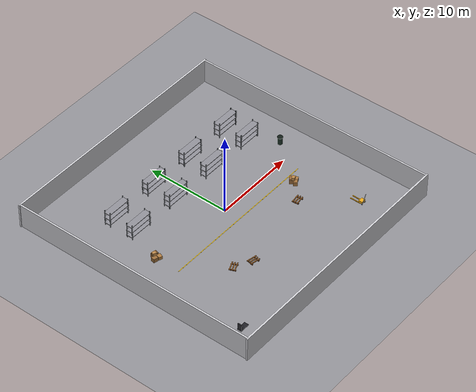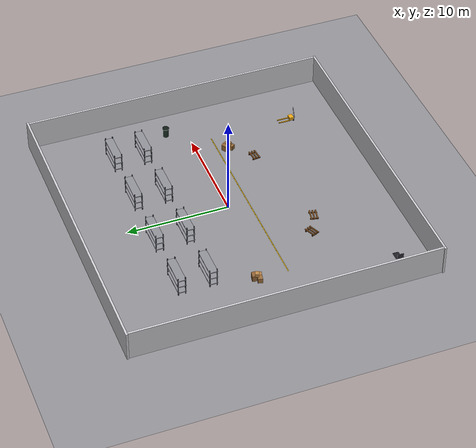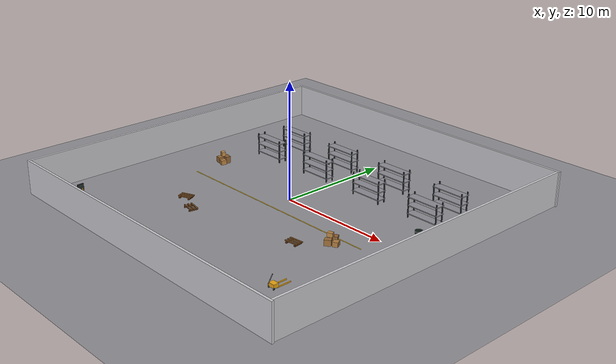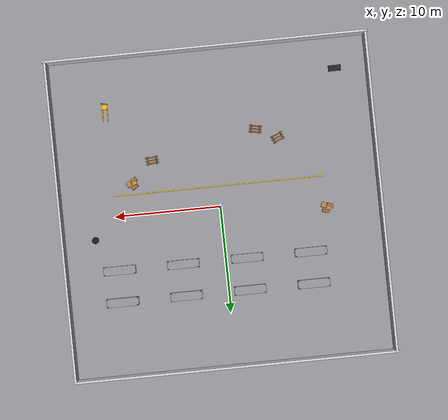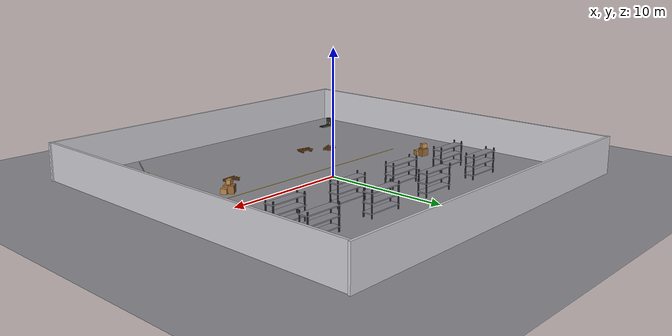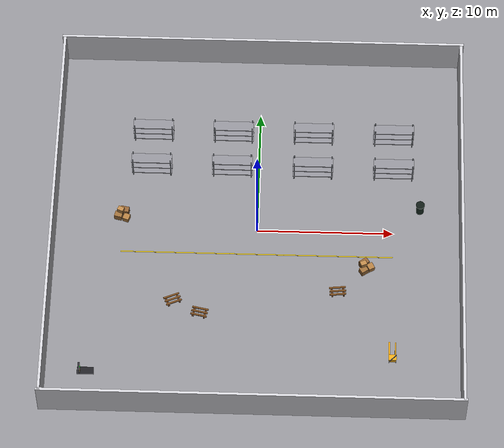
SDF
<?xml version="1.0"?>
<sdf version="1.11">
  <world name="demo_warehouse_visual">
    <physics name="1ms" type="ignored"><max_step_size>0.001</max_step_size><real_time_factor>1.0</real_time_factor></physics>
    <plugin filename="gz-sim-physics-system" name="gz::sim::systems::Physics"/>
    <plugin filename="gz-sim-sensors-system" name="gz::sim::systems::Sensors"><render_engine>ogre2</render_engine></plugin>
    <plugin filename="gz-sim-scene-broadcaster-system" name="gz::sim::systems::SceneBroadcaster"/>
    <plugin filename="gz-sim-user-commands-system" name="gz::sim::systems::UserCommands"/>
    <plugin filename="gz-sim-imu-system" name="gz::sim::systems::Imu"/>
    <plugin filename="gz-sim-navsat-system" name="gz::sim::systems::NavSat"/>

    <spherical_coordinates><surface_model>EARTH_WGS84</surface_model><world_frame_orientation>ENU</world_frame_orientation><latitude_deg>30.3072</latitude_deg><longitude_deg>-97.7560</longitude_deg><elevation>160.0</elevation><heading_deg>0</heading_deg></spherical_coordinates>

    <light name="sun" type="directional"><cast_shadows>true</cast_shadows><pose>0 0 12 0 0 0</pose><diffuse>0.8 0.8 0.8 1</diffuse><specular>0.2 0.2 0.2 1</specular><direction>-0.4 0.2 -0.9</direction></light>
    <light name="warehouse_fill" type="directional"><cast_shadows>false</cast_shadows><pose>0 0 12 0 0 0</pose><diffuse>0.45 0.45 0.45 1</diffuse><direction>0.4 -0.2 -0.9</direction></light>

    <model name="ground_plane"><static>true</static><link name="link"><collision name="collision"><geometry><plane><normal>0 0 1</normal><size>80 80</size></plane></geometry></collision><visual name="visual"><geometry><plane><normal>0 0 1</normal><size>80 80</size></plane></geometry><material><ambient>0.56 0.56 0.58 1</ambient><diffuse>0.56 0.56 0.58 1</diffuse></material></visual></link></model>

    <model name="wall_north"><static>true</static><pose>0 15 1.5 0 0 0</pose><link name="link"><collision name="collision"><geometry><box><size>30.4 0.2 3.0</size></box></geometry></collision><visual name="visual"><geometry><box><size>30.4 0.2 3.0</size></box></geometry><material><ambient>0.80 0.80 0.82 1</ambient><diffuse>0.80 0.80 0.82 1</diffuse></material></visual></link></model>
    <model name="wall_south"><static>true</static><pose>0 -15 1.5 0 0 0</pose><link name="link"><collision name="collision"><geometry><box><size>30.4 0.2 3.0</size></box></geometry></collision><visual name="visual"><geometry><box><size>30.4 0.2 3.0</size></box></geometry><material><ambient>0.80 0.80 0.82 1</ambient><diffuse>0.80 0.80 0.82 1</diffuse></material></visual></link></model>
    <model name="wall_east"><static>true</static><pose>15 0 1.5 0 0 0</pose><link name="link"><collision name="collision"><geometry><box><size>0.2 30.0 3.0</size></box></geometry></collision><visual name="visual"><geometry><box><size>0.2 30.0 3.0</size></box></geometry><material><ambient>0.80 0.80 0.82 1</ambient><diffuse>0.80 0.80 0.82 1</diffuse></material></visual></link></model>
    <model name="wall_west"><static>true</static><pose>-15 0 1.5 0 0 0</pose><link name="link"><collision name="collision"><geometry><box><size>0.2 30.0 3.0</size></box></geometry></collision><visual name="visual"><geometry><box><size>0.2 30.0 3.0</size></box></geometry><material><ambient>0.80 0.80 0.82 1</ambient><diffuse>0.80 0.80 0.82 1</diffuse></material></visual></link></model>

    <include><name>charging_dock_demo_01</name><uri>model://charging_dock</uri><pose>-12 -12 0 0 0 0</pose></include>
    <include><name>pallet_jack_demo_01</name><uri>model://warehouse_pallet_jack</uri><pose>10 -10 0 0 0 1.5708</pose></include>

    <include><name>shelf_demo_01</name><uri>model://warehouse_shelf</uri><pose>-8 5 0 0 0 0</pose></include>
    <include><name>shelf_demo_02</name><uri>model://warehouse_shelf</uri><pose>-8 8 0 0 0 0</pose></include>
    <include><name>shelf_demo_03</name><uri>model://warehouse_shelf</uri><pose>-2 5 0 0 0 0</pose></include>
    <include><name>shelf_demo_04</name><uri>model://warehouse_shelf</uri><pose>-2 8 0 0 0 0</pose></include>
    <include><name>shelf_demo_05</name><uri>model://warehouse_shelf</uri><pose>4 5 0 0 0 0</pose></include>
    <include><name>shelf_demo_06</name><uri>model://warehouse_shelf</uri><pose>4 8 0 0 0 0</pose></include>
    <include><name>shelf_demo_07</name><uri>model://warehouse_shelf</uri><pose>10 5 0 0 0 0</pose></include>
    <include><name>shelf_demo_08</name><uri>model://warehouse_shelf</uri><pose>10 8 0 0 0 0</pose></include>

    <include><name>pallet_demo_01</name><uri>model://warehouse_pallet</uri><pose>-6 -6 0 0 0 0.4</pose></include>
    <include><name>pallet_demo_02</name><uri>model://warehouse_pallet</uri><pose>-4 -7 0 0 0 -0.2</pose></include>
    <include><name>pallet_demo_03</name><uri>model://warehouse_pallet</uri><pose>6 -5 0 0 0 0.1</pose></include>
    <include><name>box_cluster_demo_01</name><uri>model://warehouse_box_cluster</uri><pose>8 -3 0 0 0 0.5</pose></include>
    <include><name>box_cluster_demo_02</name><uri>model://warehouse_box_cluster</uri><pose>-10 1 0 0 0 -0.3</pose></include>
    <include><name>trash_bin_demo_01</name><uri>model://warehouse_trash_bin</uri><pose>12 2 0 0 0 0</pose></include>

    <include><name>floor_marking_demo_01</name><uri>model://warehouse_floor_marking</uri><pose>0 -2 0 0 0 0</pose></include>
    <include><name>floor_marking_demo_02</name><uri>model://warehouse_floor_marking</uri><pose>4 -2 0 0 0 0</pose></include>
    <include><name>floor_marking_demo_03</name><uri>model://warehouse_floor_marking</uri><pose>8 -2 0 0 0 0</pose></include>
    <include><name>floor_marking_demo_04</name><uri>model://warehouse_floor_marking</uri><pose>-4 -2 0 0 0 0</pose></include>
    <include><name>floor_marking_demo_05</name><uri>model://warehouse_floor_marking</uri><pose>-8 -2 0 0 0 0</pose></include>
  </world>
</sdf>

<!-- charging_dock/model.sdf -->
<sdf version="1.11">
  <model name="charging_dock">
    <static>true</static>
    <link name="link">
      <collision name="collision"><pose>0 0 0.25 0 0 0</pose><geometry><box><size>0.9 0.25 0.5</size></box></geometry></collision>
      <visual name="base"><pose>0 0 0.12 0 0 0</pose><geometry><box><size>1.2 0.55 0.08</size></box></geometry><material><ambient>0.12 0.12 0.14 1</ambient><diffuse>0.12 0.12 0.14 1</diffuse></material></visual>
      <visual name="back_plate"><pose>-0.45 0 0.45 0 0 0</pose><geometry><box><size>0.12 0.55 0.8</size></box></geometry><material><ambient>0.18 0.18 0.20 1</ambient><diffuse>0.18 0.18 0.20 1</diffuse></material></visual>
      <visual name="contact_left"><pose>-0.37 -0.14 0.38 0 0 0</pose><geometry><box><size>0.025 0.09 0.20</size></box></geometry><material><ambient>0.95 0.75 0.20 1</ambient><diffuse>0.95 0.75 0.20 1</diffuse></material></visual>
      <visual name="contact_right"><pose>-0.37 0.14 0.38 0 0 0</pose><geometry><box><size>0.025 0.09 0.20</size></box></geometry><material><ambient>0.95 0.75 0.20 1</ambient><diffuse>0.95 0.75 0.20 1</diffuse></material></visual>
      <visual name="status_light"><pose>-0.36 0 0.68 0 0 0</pose><geometry><sphere><radius>0.045</radius></sphere></geometry><material><ambient>0.0 0.8 0.2 1</ambient><diffuse>0.0 0.8 0.2 1</diffuse><emissive>0.0 0.4 0.1 1</emissive></material></visual>
    </link>
  </model>
</sdf>

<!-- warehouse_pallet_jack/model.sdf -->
<sdf version="1.11">
  <model name="warehouse_pallet_jack">
    <static>true</static>
    <link name="link">
      <collision name="collision"><pose>0 0 0.25 0 0 0</pose><geometry><box><size>1.6 0.7 0.5</size></box></geometry></collision>
      <visual name="fork_left"><pose>0.25 -0.22 0.08 0 0 0</pose><geometry><box><size>1.3 0.08 0.08</size></box></geometry><material><ambient>0.92 0.65 0.08 1</ambient><diffuse>0.92 0.65 0.08 1</diffuse></material></visual>
      <visual name="fork_right"><pose>0.25 0.22 0.08 0 0 0</pose><geometry><box><size>1.3 0.08 0.08</size></box></geometry><material><ambient>0.92 0.65 0.08 1</ambient><diffuse>0.92 0.65 0.08 1</diffuse></material></visual>
      <visual name="body"><pose>-0.45 0 0.25 0 0 0</pose><geometry><box><size>0.45 0.55 0.30</size></box></geometry><material><ambient>0.92 0.65 0.08 1</ambient><diffuse>0.92 0.65 0.08 1</diffuse></material></visual>
      <visual name="handle"><pose>-0.75 0 0.75 0.45 0 0</pose><geometry><cylinder><radius>0.035</radius><length>1.1</length></cylinder></geometry><material><ambient>0.08 0.08 0.08 1</ambient><diffuse>0.08 0.08 0.08 1</diffuse></material></visual>
      <visual name="wheel_left"><pose>-0.65 -0.25 0.08 1.5708 0 0</pose><geometry><cylinder><radius>0.09</radius><length>0.06</length></cylinder></geometry><material><ambient>0.03 0.03 0.03 1</ambient><diffuse>0.03 0.03 0.03 1</diffuse></material></visual>
      <visual name="wheel_right"><pose>-0.65 0.25 0.08 1.5708 0 0</pose><geometry><cylinder><radius>0.09</radius><length>0.06</length></cylinder></geometry><material><ambient>0.03 0.03 0.03 1</ambient><diffuse>0.03 0.03 0.03 1</diffuse></material></visual>
    </link>
  </model>
</sdf>

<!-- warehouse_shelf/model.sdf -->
<sdf version="1.11">
  <model name="warehouse_shelf">
    <static>true</static>
    <link name="link">
      <collision name="collision">
        <geometry><box><size>3.0 0.8 2.0</size></box></geometry>
        <pose>0 0 1.0 0 0 0</pose>
      </collision>
      <visual name="upright_left"><pose>-1.4 -0.35 1.0 0 0 0</pose><geometry><box><size>0.08 0.08 2.0</size></box></geometry><material><ambient>0.18 0.20 0.22 1</ambient><diffuse>0.18 0.20 0.22 1</diffuse></material></visual>
      <visual name="upright_right"><pose>1.4 -0.35 1.0 0 0 0</pose><geometry><box><size>0.08 0.08 2.0</size></box></geometry><material><ambient>0.18 0.20 0.22 1</ambient><diffuse>0.18 0.20 0.22 1</diffuse></material></visual>
      <visual name="upright_back_left"><pose>-1.4 0.35 1.0 0 0 0</pose><geometry><box><size>0.08 0.08 2.0</size></box></geometry><material><ambient>0.18 0.20 0.22 1</ambient><diffuse>0.18 0.20 0.22 1</diffuse></material></visual>
      <visual name="upright_back_right"><pose>1.4 0.35 1.0 0 0 0</pose><geometry><box><size>0.08 0.08 2.0</size></box></geometry><material><ambient>0.18 0.20 0.22 1</ambient><diffuse>0.18 0.20 0.22 1</diffuse></material></visual>
      <visual name="shelf_bottom"><pose>0 0 0.35 0 0 0</pose><geometry><box><size>3.0 0.8 0.08</size></box></geometry><material><ambient>0.55 0.55 0.58 1</ambient><diffuse>0.55 0.55 0.58 1</diffuse></material></visual>
      <visual name="shelf_middle"><pose>0 0 1.05 0 0 0</pose><geometry><box><size>3.0 0.8 0.08</size></box></geometry><material><ambient>0.55 0.55 0.58 1</ambient><diffuse>0.55 0.55 0.58 1</diffuse></material></visual>
      <visual name="shelf_top"><pose>0 0 1.75 0 0 0</pose><geometry><box><size>3.0 0.8 0.08</size></box></geometry><material><ambient>0.55 0.55 0.58 1</ambient><diffuse>0.55 0.55 0.58 1</diffuse></material></visual>
    </link>
  </model>
</sdf>

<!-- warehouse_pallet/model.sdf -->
<sdf version="1.11">
  <model name="warehouse_pallet">
    <static>true</static>
    <link name="link">
      <collision name="collision"><pose>0 0 0.09 0 0 0</pose><geometry><box><size>1.2 0.8 0.18</size></box></geometry></collision>
      <visual name="deck_front"><pose>0 -0.28 0.18 0 0 0</pose><geometry><box><size>1.2 0.12 0.08</size></box></geometry><material><ambient>0.50 0.32 0.14 1</ambient><diffuse>0.50 0.32 0.14 1</diffuse></material></visual>
      <visual name="deck_mid"><pose>0 0 0.18 0 0 0</pose><geometry><box><size>1.2 0.12 0.08</size></box></geometry><material><ambient>0.50 0.32 0.14 1</ambient><diffuse>0.50 0.32 0.14 1</diffuse></material></visual>
      <visual name="deck_back"><pose>0 0.28 0.18 0 0 0</pose><geometry><box><size>1.2 0.12 0.08</size></box></geometry><material><ambient>0.50 0.32 0.14 1</ambient><diffuse>0.50 0.32 0.14 1</diffuse></material></visual>
      <visual name="runner_left"><pose>-0.42 0 0.06 0 0 0</pose><geometry><box><size>0.12 0.8 0.10</size></box></geometry><material><ambient>0.42 0.24 0.10 1</ambient><diffuse>0.42 0.24 0.10 1</diffuse></material></visual>
      <visual name="runner_right"><pose>0.42 0 0.06 0 0 0</pose><geometry><box><size>0.12 0.8 0.10</size></box></geometry><material><ambient>0.42 0.24 0.10 1</ambient><diffuse>0.42 0.24 0.10 1</diffuse></material></visual>
    </link>
  </model>
</sdf>

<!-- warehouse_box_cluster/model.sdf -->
<sdf version="1.11">
  <model name="warehouse_box_cluster">
    <static>true</static>
    <link name="link">
      <collision name="collision"><pose>0 0 0.35 0 0 0</pose><geometry><box><size>1.2 1.0 0.7</size></box></geometry></collision>
      <visual name="box_a"><pose>-0.25 -0.20 0.25 0 0 0.08</pose><geometry><box><size>0.55 0.45 0.50</size></box></geometry><material><ambient>0.60 0.42 0.22 1</ambient><diffuse>0.60 0.42 0.22 1</diffuse></material></visual>
      <visual name="box_b"><pose>0.35 -0.15 0.20 0 0 -0.04</pose><geometry><box><size>0.45 0.50 0.40</size></box></geometry><material><ambient>0.68 0.48 0.25 1</ambient><diffuse>0.68 0.48 0.25 1</diffuse></material></visual>
      <visual name="box_c"><pose>0.05 0.30 0.30 0 0 0.12</pose><geometry><box><size>0.65 0.45 0.60</size></box></geometry><material><ambient>0.56 0.38 0.20 1</ambient><diffuse>0.56 0.38 0.20 1</diffuse></material></visual>
      <visual name="box_d"><pose>-0.15 0.05 0.78 0 0 -0.10</pose><geometry><box><size>0.45 0.35 0.35</size></box></geometry><material><ambient>0.72 0.52 0.28 1</ambient><diffuse>0.72 0.52 0.28 1</diffuse></material></visual>
    </link>
  </model>
</sdf>

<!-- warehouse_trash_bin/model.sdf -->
<sdf version="1.11">
  <model name="warehouse_trash_bin">
    <static>true</static>
    <link name="link">
      <collision name="collision"><pose>0 0 0.45 0 0 0</pose><geometry><cylinder><radius>0.28</radius><length>0.9</length></cylinder></geometry></collision>
      <visual name="body"><pose>0 0 0.45 0 0 0</pose><geometry><cylinder><radius>0.28</radius><length>0.9</length></cylinder></geometry><material><ambient>0.10 0.18 0.14 1</ambient><diffuse>0.10 0.18 0.14 1</diffuse></material></visual>
      <visual name="lid"><pose>0 0 0.93 0 0 0</pose><geometry><cylinder><radius>0.32</radius><length>0.06</length></cylinder></geometry><material><ambient>0.06 0.10 0.08 1</ambient><diffuse>0.06 0.10 0.08 1</diffuse></material></visual>
    </link>
  </model>
</sdf>

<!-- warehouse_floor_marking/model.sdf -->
<sdf version="1.11">
  <model name="warehouse_floor_marking">
    <static>true</static>
    <link name="link">
      <visual name="strip"><pose>0 0 0.004 0 0 0</pose><geometry><box><size>4.0 0.08 0.004</size></box></geometry><material><ambient>1.0 0.78 0.05 1</ambient><diffuse>1.0 0.78 0.05 1</diffuse><emissive>0.12 0.09 0.0 1</emissive></material></visual>
    </link>
  </model>
</sdf>
